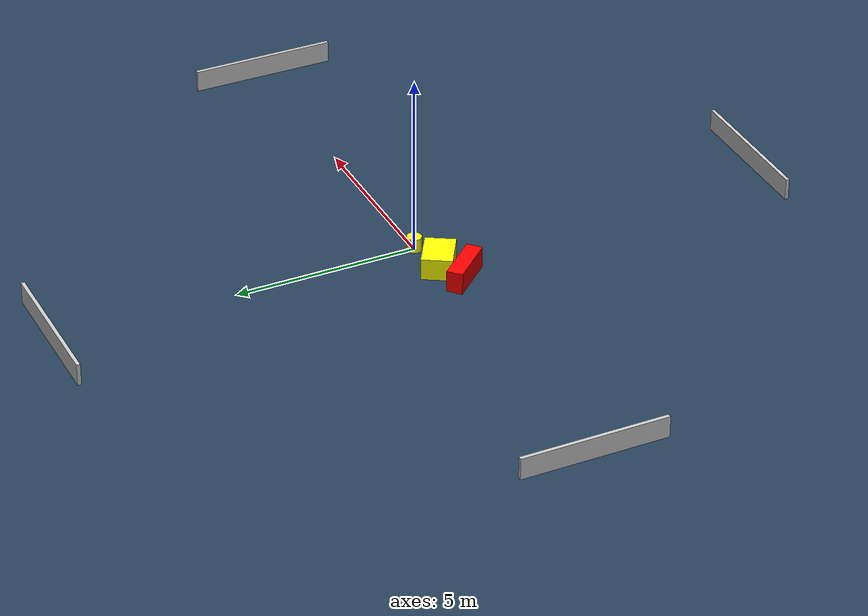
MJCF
<?xml version="1.0" ?>
<mujoco model="generated_environment">
  <option timestep="0.01" integrator="RK4" cone="elliptic"/>
  <default>
    <geom density="1"/>
  </default>
  <asset>
    <texture builtin="gradient" height="3072" name="skybox" rgb1="0.3 0.5 0.7" rgb2="0 0 0" type="skybox" width="512"/>
    <texture builtin="checker" height="300" name="groundplane" rgb1="0.2 0.3 0.4" rgb2="0.1 0.2 0.3" type="2d" width="300"/>
    <material name="groundplane" reflectance="0.2" texrepeat="5 5" texture="groundplane"/>
  </asset>
  <worldbody>
    <light dir="0 0 -1" directional="true" pos="0 0 1.5"/>
    <geom condim="3" friction="0.5 0.005 0.001" material="groundplane" name="floor" pos="0 0 0" size="0 0 0.05" type="plane"/>
    <body name="walls">
      <geom name="wall_1" condim="4" pos="-10.0 0.0 0.3" rgba="0.800000011920929 0.800000011920929 0.800000011920929 1.0" size="0.05 2.0 0.3" type="box"/>
      <geom name="wall_2" condim="4" pos="10.0 0.0 0.3" rgba="0.800000011920929 0.800000011920929 0.800000011920929 1.0" size="0.05 2.0 0.3" type="box"/>
      <geom name="wall_3" condim="4" pos="0.0 -10.0 0.3" rgba="0.800000011920929 0.800000011920929 0.800000011920929 1.0" size="2.0 0.05 0.3" type="box"/>
      <geom name="wall_4" condim="4" pos="0.0 10.0 0.3" rgba="0.800000011920929 0.800000011920929 0.800000011920929 1.0" size="2.0 0.05 0.3" type="box"/>
    </body>
    <body name="robot">
      <joint name="joint_x" type="slide" pos="0 0 0" axis="1 0 0"/>
      <joint name="joint_y" type="slide" pos="0 0 0" axis="0 1 0"/>
      <geom name="robot" type="cylinder" pos="0.0 0.0 0.2" size="0.2 0.2 0.0" mass="5.0" friction="1.0 0.005 0.0001" condim="4" rgba="1.0 1.0 0.0 1.0"/>
    </body>
    <body name="obstacle_1_movable">
      <geom name="obstacle_1_movable" condim="4" pos="-1.1031014692380574 -0.16889786897960815 0.3" euler="0 0 149.11371885584737" friction="0.0 0.005 0.001" rgba="1.0 1.0 0.0 1.0" size="0.5347655778919573 0.4124406400151588 0.3" type="box" mass="0.1"/>
      <joint type="free"/>
    </body>
    <body name="obstacle_2_static">
      <geom name="obstacle_2_static" condim="4" pos="-1.8060674801903156 -0.5672245646104159 0.3" euler="0 0 222.50869510845" friction="0.0 0.005 0.001" rgba="1.0 0.0 0.0 1.0" size="0.21770128853898163 0.6985900968899873 0.3" type="box"/>
    </body>
  </worldbody>
  <actuator>
    <motor name="actuator_x" joint="joint_x" gear="1" ctrlrange="-1 1"/>
    <motor name="actuator_y" joint="joint_y" gear="1" ctrlrange="-1 1"/>
  </actuator>
</mujoco>
